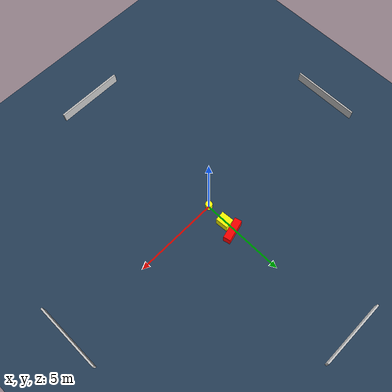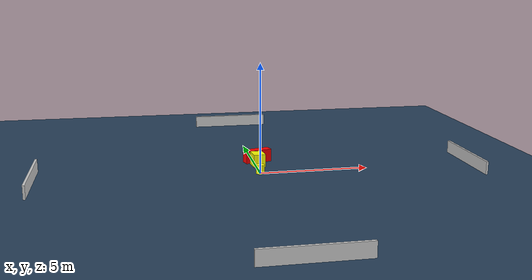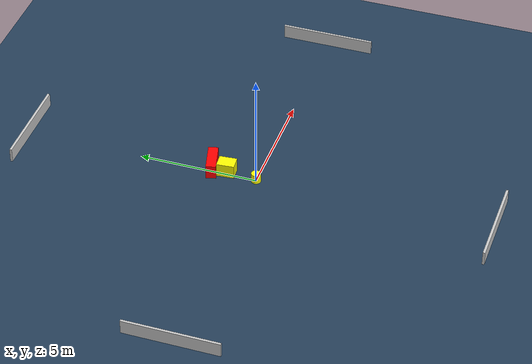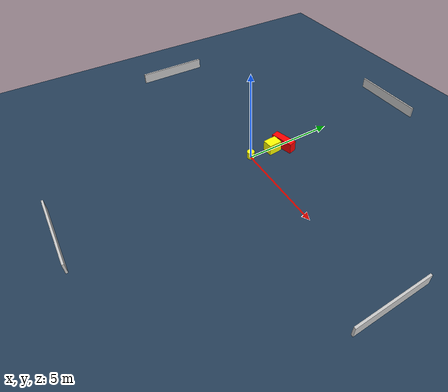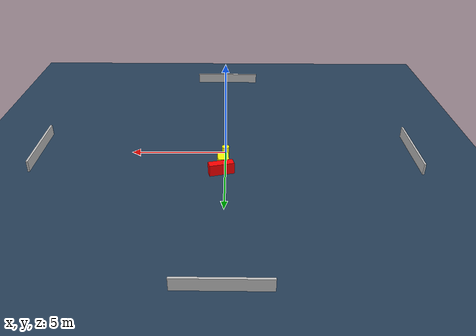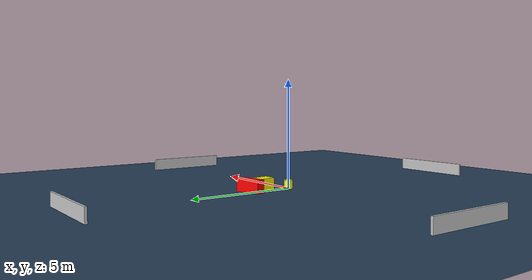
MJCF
<?xml version="1.0" ?>
<mujoco model="generated_environment">
  <option timestep="0.01" integrator="RK4" cone="elliptic"/>
  <default>
    <geom density="1"/>
  </default>
  <asset>
    <texture builtin="gradient" height="3072" name="skybox" rgb1="0.3 0.5 0.7" rgb2="0 0 0" type="skybox" width="512"/>
    <texture builtin="checker" height="300" name="groundplane" rgb1="0.2 0.3 0.4" rgb2="0.1 0.2 0.3" type="2d" width="300"/>
    <material name="groundplane" reflectance="0.2" texrepeat="5 5" texture="groundplane"/>
  </asset>
  <worldbody>
    <light dir="0 0 -1" directional="true" pos="0 0 1.5"/>
    <geom condim="3" friction="0.5 0.005 0.001" material="groundplane" name="floor" pos="0 0 0" size="0 0 0.05" type="plane"/>
    <body name="walls">
      <geom name="wall_1" condim="4" pos="-10.0 0.0 0.3" rgba="0.800000011920929 0.800000011920929 0.800000011920929 1.0" size="0.05 2.0 0.3" type="box"/>
      <geom name="wall_2" condim="4" pos="10.0 0.0 0.3" rgba="0.800000011920929 0.800000011920929 0.800000011920929 1.0" size="0.05 2.0 0.3" type="box"/>
      <geom name="wall_3" condim="4" pos="0.0 -10.0 0.3" rgba="0.800000011920929 0.800000011920929 0.800000011920929 1.0" size="2.0 0.05 0.3" type="box"/>
      <geom name="wall_4" condim="4" pos="0.0 10.0 0.3" rgba="0.800000011920929 0.800000011920929 0.800000011920929 1.0" size="2.0 0.05 0.3" type="box"/>
    </body>
    <body name="robot">
      <joint name="joint_x" type="slide" pos="0 0 0" axis="1 0 0"/>
      <joint name="joint_y" type="slide" pos="0 0 0" axis="0 1 0"/>
      <geom name="robot" type="cylinder" pos="0.0 0.0 0.2" size="0.2 0.2 0.0" mass="5.0" friction="1.0 0.005 0.0001" condim="4" rgba="1.0 1.0 0.0 1.0"/>
    </body>
    <body name="obstacle_1_movable">
      <geom name="obstacle_1_movable" condim="4" pos="0.11119573522026079 1.304336615215841 0.3" euler="0 0 94.58448108115412" friction="0.0 0.005 0.001" rgba="1.0 1.0 0.0 1.0" size="0.3703556129975369 0.2826489593505854 0.3" type="box" mass="0.1"/>
      <joint type="free"/>
    </body>
    <body name="obstacle_2_static">
      <geom name="obstacle_2_static" condim="4" pos="0.20101238704311966 1.972706703037475 0.3" euler="0 0 194.38185350930556" friction="0.0 0.005 0.001" rgba="1.0 0.0 0.0 1.0" size="0.6390640063876507 0.20969719208957863 0.3" type="box"/>
    </body>
  </worldbody>
  <actuator>
    <motor name="actuator_x" joint="joint_x" gear="1" ctrlrange="-1 1"/>
    <motor name="actuator_y" joint="joint_y" gear="1" ctrlrange="-1 1"/>
  </actuator>
</mujoco>
